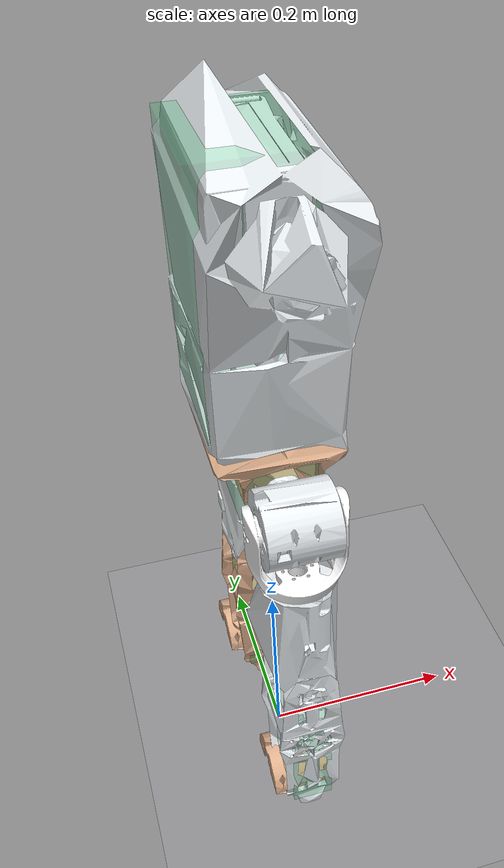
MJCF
<mujoco model="dm10 scene">
  <include file="dm10_actuator.xml"/>

  <statistic center="0 0 0.4" extent="0.9" meansize="0.05"/>

  <visual>
    <headlight diffuse="0.6 0.6 0.6" ambient="0.1 0.1 0.1" specular="0.9 0.9 0.9"/>
    <map fogstart="100.0" fogend="300.0"/>
    <rgba haze="0.75 0.75 0.77 1"/>
    <global azimuth="-130" elevation="-20"/>
  </visual>

  <asset>
    <texture type="skybox" builtin="gradient" rgb1="0.55 0.55 0.57" rgb2="0.55 0.55 0.57" width="512" height="3072"/>
    <texture type="2d" name="groundplane" builtin="checker" rgb1="0.62 0.62 0.63" rgb2="0.49 0.49 0.51"
      width="300" height="300"/>
    <material name="groundplane" texture="groundplane" texuniform="true" texrepeat="1.25 1.25" reflectance="0.0"/>
  </asset>

  <worldbody>
    <light pos="0 0 1.5" dir="0 0 -1" directional="true" diffuse="0.8 0.8 0.8"/>
    <geom name="floor" size="0 0 0.05" type="plane" material="groundplane" priority="2" condim="6"/>
  </worldbody>

  <sensor>
    <contact name="left_foot_contact_0" geom1="floor" geom2="leg_l5_foot_geom" data="found" num="1" reduce="mindist"/>
    <contact name="right_foot_contact_0" geom1="floor" geom2="leg_r5_foot_geom" data="found" num="1" reduce="mindist"/>
  </sensor>

  <keyframe>
    <key name="home"
      qpos="0 0 0.7222 1 0 0 0  0 0 0 0 0  0 0 0 0 0"
      ctrl="0 0 0 0 0  0 0 0 0 0"/>
  </keyframe>
</mujoco>

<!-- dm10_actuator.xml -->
<mujoco model="dm10_actuator">
  <option timestep="0.001" iterations="50" solver="PGS" gravity="0 0 -9.81"/>
  <compiler angle="radian" autolimits="true" meshdir="assets"/>

  <default>
    <joint limited="true" armature="0.05" damping="0.01"/>
  </default>

  <asset>
    <material name="dark" rgba="0.898039 0.917647 0.929412 1.0"/>
    <material name="orange" rgba="0.854902 0.67451 0.541176 1.0"/>
    <material name="white" rgba="1 1 1 1"/>
    <mesh name="base_link" file="base_link.STL"/>
    <mesh name="loin_yaw_Link" file="loin_yaw_Link.STL"/>
    <mesh name="leg_l1_link" file="leg_l1_link.STL"/>
    <mesh name="leg_l2_link" file="leg_l2_link.STL"/>
    <mesh name="leg_l3_link" file="leg_l3_link.STL"/>
    <mesh name="leg_l4_link" file="leg_l4_link.STL"/>
    <mesh name="leg_l5_link" file="leg_l5_link.STL"/>
    <mesh name="leg_r1_link" file="leg_r1_link.STL"/>
    <mesh name="leg_r2_link" file="leg_r2_link.STL"/>
    <mesh name="leg_r3_link" file="leg_r3_link.STL"/>
    <mesh name="leg_r4_link" file="leg_r4_link.STL"/>
    <mesh name="leg_r5_link" file="leg_r5_link.STL"/>
  </asset>

  <worldbody>
    <body name="base_link" pos="0.0 0.0 0.7" quat="1.0 0.0 0.0 0.0">
      <inertial mass="4.7679" pos="0.00377207 0.00223131 -0.115526"
        quat="0.999479912032634 -0.0305585973104418 0.0102985990935879 -0.0001281809887183"
        diaginertia="0.0503512 0.0321506 0.0282011"/>
      <joint name="dummy_to_base_link" type="free" pos="0.0 0.0 0.0" axis="0.0 0.0 1.0"
        range="0.0 0.0" damping="0.0" stiffness="0.0" armature="0.0" frictionloss="0.0"/>
      <site name="imu_in_torso" size="0.01" pos="0.0 0.0 -0.05"/>
      <geom type="mesh" mesh="base_link" contype="0" conaffinity="0" pos="0.0 0.0 0.0"
        quat="1.0 0.0 0.0 0.0" material="dark"/>
      <geom name="base_collision" rgba="0 0.7 0.3 0.1" type="box" pos="-0.01 0.0 -0.11"
        quat="1.0 0.0 0.0 0.0" size="0.05 0.06 0.12" contype="1" conaffinity="1"
        friction="1.0 0.005 0.0001"/>

      <body name="loin_yaw_Link" pos="0.0042148 0.0028621 -0.25475" quat="1.0 0.0 0.0 0.0">
        <inertial mass="1.2992" pos="-1.9e-05 0.0 -0.041281"
          quat="0.7056683488993905 0.7056683488993905 -0.045079722288498 0.045079722288498"
          diaginertia="0.00246554 0.00237046 0.001435"/>
        <geom type="mesh" mesh="loin_yaw_Link" contype="0" conaffinity="0" pos="0.0 0.0 0.0"
          quat="1.0 0.0 0.0 0.0" material="orange"/>
        <geom name="waist_collision" rgba="0 0.7 0.3 0.1" type="box" pos="0.0 0.0 -0.045"
          quat="1.0 0.0 0.0 0.0" size="0.04 0.05 0.035" contype="1" conaffinity="1"
          friction="1.0 0.005 0.0001"/>

        <body name="leg_l1_link" pos="0.0 0.05355 -0.0515" quat="1.0 0.0 0.0 0.0">
          <inertial mass="0.5189" pos="0.003422 0.041688 -7.6e-05"
            quat="0.477051207758947 0.1615360703500239 -0.7244793155155197 0.4705932049464442"
            diaginertia="0.000309584 0.000307706 0.00030371"/>
          <joint name="leg_l1_joint" type="hinge" pos="0.0 0.0 0.0" axis="0.0 1.0 0.0"
            range="-1.05 1.05" damping="0.0" stiffness="0.0" armature="0.05" frictionloss="0.075"/>
          <geom type="mesh" mesh="leg_l1_link" contype="0" conaffinity="0" pos="0.0 0.0 0.0"
            quat="1.0 0.0 0.0 0.0" material="orange"/>
          <geom name="leg_l1_collision" rgba="0 0.7 0.3 0.1" type="box" pos="0.0 0.0 0.0"
            quat="1.0 0.0 0.0 0.0" size="5e-05 5e-05 5e-05" contype="1" conaffinity="1"
            friction="1.0 0.005 0.0001"/>

          <body name="leg_l2_link" pos="0.03105 0.042 0.0" quat="1.0 0.0 0.0 0.0">
            <inertial mass="0.1429" pos="-0.029211 1.6e-05 -0.031591"
              quat="0.5978653600860446 0.3775672274035236 0.3775672274035236 0.5978653600860446"
              diaginertia="0.000254 0.000173808 0.000153192"/>
            <joint name="leg_l2_joint" type="hinge" pos="0.0 0.0 0.0" axis="1.0 0.0 0.0"
              range="-0.52 0.785" damping="0.0" stiffness="0.0" armature="0.05" frictionloss="0.075"/>
            <geom type="mesh" mesh="leg_l2_link" contype="0" conaffinity="0" pos="0.0 0.0 0.0"
              quat="1.0 0.0 0.0 0.0" material="white"/>
            <geom name="leg_l2_collision" rgba="0 0.7 0.3 0.1" type="box" pos="0.0 0.0 0.0"
              quat="1.0 0.0 0.0 0.0" size="5e-05 5e-05 5e-05" contype="1" conaffinity="1"
              friction="1.0 0.005 0.0001"/>

            <body name="leg_l3_link" pos="-0.03105 0.0 -0.07405" quat="1.0 0.0 0.0 0.0">
              <inertial mass="0.9821" pos="-8.2e-05 0.001688 -0.070672"
                quat="0.998709467215822 0.0207181096923369 -0.0032466115188283 0.0462560216394716"
                diaginertia="0.00253617 0.00252125 0.00057658"/>
              <joint name="leg_l3_joint" type="hinge" pos="0.0 0.0 0.0" axis="0.0 0.0 1.0"
                range="-0.52 0.785" damping="0.0" stiffness="0.0" armature="0.05" frictionloss="0.075"/>
              <geom type="mesh" mesh="leg_l3_link" contype="0" conaffinity="0" pos="0.0 0.0 0.0"
                quat="1.0 0.0 0.0 0.0" material="dark"/>
              <geom name="leg_l3_collision" rgba="0 0.7 0.3 0.1" type="box" pos="0.0 0.0 0.0"
                quat="1.0 0.0 0.0 0.0" size="5e-05 5e-05 5e-05" contype="1" conaffinity="1"
                friction="1.0 0.005 0.0001"/>

              <body name="leg_l4_link" pos="0.0 0.03105 -0.11705" quat="1.0 0.0 0.0 0.0">
                <inertial mass="0.5069" pos="0.000193 -0.033837 -0.078429"
                  quat="0.999871027280792 0.0064783001767559 5.1954201417534585e-05 -0.0146955004009566"
                  diaginertia="0.000963118 0.00082696 0.000363922"/>
                <joint name="leg_l4_joint" type="hinge" pos="0.0 0.0 0.0" axis="0.0 1.0 0.0"
                  range="-0.3 2.3562" damping="0.0" stiffness="0.0" armature="0.05" frictionloss="0.075"/>
                <geom type="mesh" mesh="leg_l4_link" contype="0" conaffinity="0" pos="0.0 0.0 0.0"
                  quat="1.0 0.0 0.0 0.0" material="orange"/>
                <geom name="leg_l4_collision" rgba="0 0.7 0.3 0.1" type="box" pos="0.0 -0.03 -0.1"
                  quat="1.0 0.0 0.0 0.0" size="0.0205 0.035 0.075" contype="1" conaffinity="1"
                  friction="1.0 0.005 0.0001"/>

                <body name="leg_l5_link" pos="-1.6188e-05 -0.01955 -0.20287" quat="1.0 0.0 0.0 0.0">
                  <inertial mass="0.2472" pos="0.00260998 -0.00912783 0.0166971"
                    quat="0.3071679044288681 0.6259468052451321 0.6777817891173791 0.2333459273975761"
                    diaginertia="0.0012183 0.000880174 0.000430339"/>
                  <joint name="leg_l5_joint" type="hinge" pos="0.0 0.0 0.0" axis="0.0 1.0 0.0"
                    range="-1.047 0.3" damping="0.0" stiffness="0.0" armature="0.05" frictionloss="0.075"/>
                  <site name="left_foot" rgba="1 0 0 1" size="0.01" pos="0.027 -0.012 -0.012"/>
                  <geom type="mesh" mesh="leg_l5_link" contype="0" conaffinity="0" pos="0.0 0.0 0.0"
                    quat="1.0 0.0 0.0 0.0" material="orange"/>
                  <geom name="leg_l5_foot_geom" rgba="0 0.7 0.3 0.1" type="box" pos="0.027 -0.012 -0.012"
                    quat="1.0 0.0 0.0 0.0" size="0.0875 0.025 0.01" contype="1" conaffinity="1"
                    friction="1.0 0.005 0.0001"/>
                </body>
              </body>
            </body>
          </body>
        </body>

        <body name="leg_r1_link" pos="0.0 -0.05355 -0.0515" quat="1.0 0.0 0.0 0.0">
          <inertial mass="0.5189" pos="0.00342 -0.041705 -8.4e-05"
            quat="0.1615360703500239 0.477051207758947 -0.4705932049464442 0.7244793155155197"
            diaginertia="0.000309584 0.000307706 0.00030371"/>
          <joint name="leg_r1_joint" type="hinge" pos="0.0 0.0 0.0" axis="0.0 1.0 0.0"
            range="-1.05 1.05" damping="0.0" stiffness="0.0" armature="0.05" frictionloss="0.075"/>
          <geom type="mesh" mesh="leg_r1_link" contype="0" conaffinity="0" pos="0.0 0.0 0.0"
            quat="1.0 0.0 0.0 0.0" material="dark"/>
          <geom name="leg_r1_collision" rgba="0 0.7 0.3 0.1" type="box" pos="0.0 0.0 0.0"
            quat="1.0 0.0 0.0 0.0" size="5e-05 5e-05 5e-05" contype="1" conaffinity="1"
            friction="1.0 0.005 0.0001"/>

          <body name="leg_r2_link" pos="0.03105 -0.042 0.0" quat="1.0 0.0 0.0 0.0">
            <inertial mass="0.1429" pos="-0.029211 1.6e-05 -0.031544"
              quat="0.5978653600860446 0.3775672274035236 0.3775672274035236 0.5978653600860446"
              diaginertia="0.000254 0.000173808 0.000153192"/>
            <joint name="leg_r2_joint" type="hinge" pos="0.0 0.0 0.0" axis="1.0 0.0 0.0"
              range="-0.785 0.52" damping="0.0" stiffness="0.0" armature="0.05" frictionloss="0.075"/>
            <geom type="mesh" mesh="leg_r2_link" contype="0" conaffinity="0" pos="0.0 0.0 0.0"
              quat="1.0 0.0 0.0 0.0" material="white"/>
            <geom name="leg_r2_collision" rgba="0 0.7 0.3 0.1" type="box" pos="0.0 0.0 0.0"
              quat="1.0 0.0 0.0 0.0" size="5e-05 5e-05 5e-05" contype="1" conaffinity="1"
              friction="1.0 0.005 0.0001"/>

            <body name="leg_r3_link" pos="-0.03105 0.0 -0.07405" quat="1.0 0.0 0.0 0.0">
              <inertial mass="0.9821" pos="0.00017 -0.001688 -0.070673"
                quat="0.9994190761366344 -0.0208749015902685 0.0007236900551313 -0.0269300020515515"
                diaginertia="0.00253606 0.00252134 0.000576607"/>
              <joint name="leg_r3_joint" type="hinge" pos="0.0 0.0 0.0" axis="0.0 0.0 1.0"
                range="-0.785 0.52" damping="0.0" stiffness="0.0" armature="0.05" frictionloss="0.075"/>
              <geom type="mesh" mesh="leg_r3_link" contype="0" conaffinity="0" pos="0.0 0.0 0.0"
                quat="1.0 0.0 0.0 0.0" material="dark"/>
              <geom name="leg_r3_collision" rgba="0 0.7 0.3 0.1" type="box" pos="0.0 0.0 0.0"
                quat="1.0 0.0 0.0 0.0" size="5e-05 5e-05 5e-05" contype="1" conaffinity="1"
                friction="1.0 0.005 0.0001"/>

              <body name="leg_r4_link" pos="0.0 -0.03105 -0.11705" quat="1.0 0.0 0.0 0.0">
                <inertial mass="0.5069" pos="0.000261 0.033885 -0.078429"
                  quat="0.999918265120372 -0.0064927017214882 -0.0007957512109871 0.0109852029126391"
                  diaginertia="0.000963067 0.000827012 0.00036392"/>
                <joint name="leg_r4_joint" type="hinge" pos="0.0 0.0 0.0" axis="0.0 1.0 0.0"
                  range="-0.3 2.3562" damping="0.0" stiffness="0.0" armature="0.05" frictionloss="0.075"/>
                <geom type="mesh" mesh="leg_r4_link" contype="0" conaffinity="0" pos="0.0 0.0 0.0"
                  quat="1.0 0.0 0.0 0.0" material="dark"/>
                <geom name="leg_r4_collision" rgba="0 0.7 0.3 0.1" type="box" pos="0.0 0.03 -0.1"
                  quat="1.0 0.0 0.0 0.0" size="0.0205 0.035 0.075" contype="1" conaffinity="1"
                  friction="1.0 0.005 0.0001"/>

                <body name="leg_r5_link" pos="0.0 0.0196 -0.20286" quat="1.0 0.0 0.0 0.0">
                  <inertial mass="0.2472" pos="0.00260814 0.00912783 0.0166953"
                    quat="0.2333469473324332 0.6777818470212655 0.6259458587209059 0.3071689306704444"
                    diaginertia="0.0012183 0.000880174 0.000430339"/>
                  <joint name="leg_r5_joint" type="hinge" pos="0.0 0.0 0.0" axis="0.0 1.0 0.0"
                    range="-1.047 0.3" damping="0.0" stiffness="0.0" armature="0.05" frictionloss="0.075"/>
                  <site name="right_foot" rgba="1 0 0 1" size="0.01" pos="0.027 0.012 -0.012"/>
                  <geom type="mesh" mesh="leg_r5_link" contype="0" conaffinity="0" pos="0.0 0.0 0.0"
                    quat="1.0 0.0 0.0 0.0" material="orange"/>
                  <geom name="leg_r5_foot_geom" rgba="0 0.7 0.3 0.1" type="box" pos="0.027 0.012 -0.012"
                    quat="1.0 0.0 0.0 0.0" size="0.0875 0.025 0.01" contype="1" conaffinity="1"
                    friction="1.0 0.005 0.0001"/>
                </body>
              </body>
            </body>
          </body>
        </body>
      </body>
    </body>
  </worldbody>

  <actuator>
    <dcmotor name="leg_l1_joint_motor" joint="leg_l1_joint" nominal="24 54 6.4017" input="voltage" ctrlrange="-24 24"/>
    <dcmotor name="leg_l2_joint_motor" joint="leg_l2_joint" nominal="24 54 6.4017" input="voltage" ctrlrange="-24 24"/>
    <dcmotor name="leg_l3_joint_motor" joint="leg_l3_joint" nominal="24 54 6.4017" input="voltage" ctrlrange="-24 24"/>
    <dcmotor name="leg_l4_joint_motor" joint="leg_l4_joint" nominal="24 54 6.4017" input="voltage" ctrlrange="-24 24"/>
    <dcmotor name="leg_l5_joint_motor" joint="leg_l5_joint" nominal="24 54 6.4017" input="voltage" ctrlrange="-24 24"/>
    <dcmotor name="leg_r1_joint_motor" joint="leg_r1_joint" nominal="24 54 6.4017" input="voltage" ctrlrange="-24 24"/>
    <dcmotor name="leg_r2_joint_motor" joint="leg_r2_joint" nominal="24 54 6.4017" input="voltage" ctrlrange="-24 24"/>
    <dcmotor name="leg_r3_joint_motor" joint="leg_r3_joint" nominal="24 54 6.4017" input="voltage" ctrlrange="-24 24"/>
    <dcmotor name="leg_r4_joint_motor" joint="leg_r4_joint" nominal="24 54 6.4017" input="voltage" ctrlrange="-24 24"/>
    <dcmotor name="leg_r5_joint_motor" joint="leg_r5_joint" nominal="24 54 6.4017" input="voltage" ctrlrange="-24 24"/>
  </actuator>

  <sensor>
    <velocimeter site="imu_in_torso" name="pelvis_local_linvel"/>
    <gyro site="imu_in_torso" name="torso_gyro" cutoff="34.9" noise="0.0005"/>
    <accelerometer site="imu_in_torso" name="torso_acceleration" cutoff="157" noise="0.01"/>
    <framezaxis objtype="site" objname="imu_in_torso" name="torso_upvector"/>

    <framepos objtype="site" objname="left_foot" name="left_foot_pos"/>
    <framequat objtype="site" objname="left_foot" name="left_foot_quat"/>
    <framezaxis objtype="site" objname="left_foot" name="left_foot_upvector"/>

    <framepos objtype="site" objname="right_foot" name="right_foot_pos"/>
    <framequat objtype="site" objname="right_foot" name="right_foot_quat"/>
    <framezaxis objtype="site" objname="right_foot" name="right_foot_upvector"/>
  </sensor>
</mujoco>
